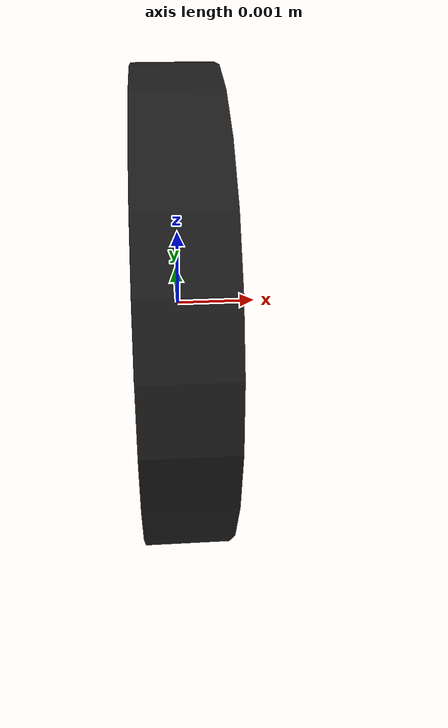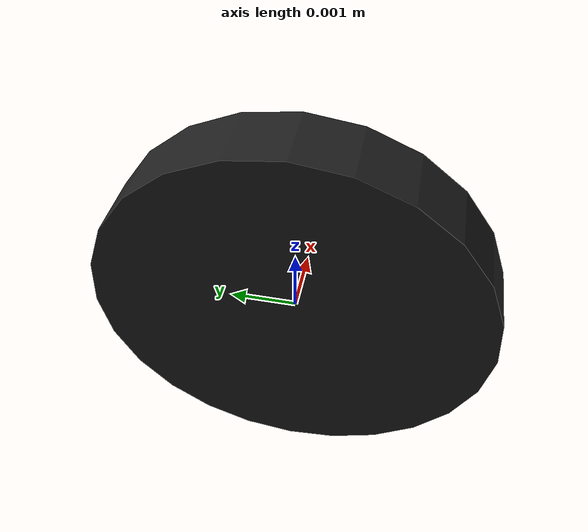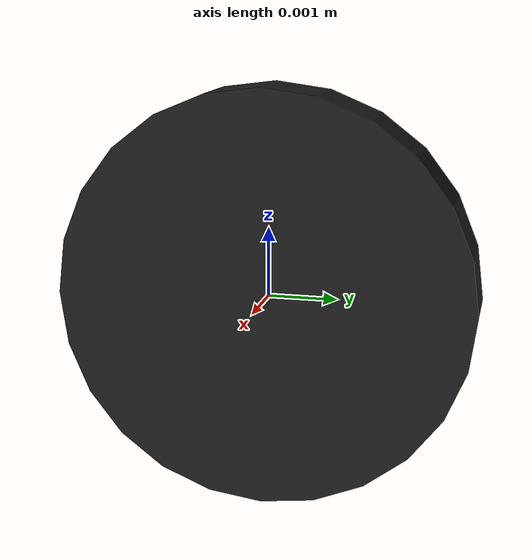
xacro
<?xml version="1.0"?>
<robot name="cam" xmlns:xacro="http://www.ros.org/wiki/xacro">
<!-- link name="world" /-->
<!-- Camera -->
<xacro:macro name="cam" params="name parent xyz rpy">

  <xacro:property name="camera_mockup_height" value="0.001" /> <!-- (m) camera mockup cylinder height -->
  <xacro:property name="camera_mockup_radius" value="0.003" /> <!-- (m) camera mockup cylinder radius -->

  <!-- Dummy joint, so that the root link has no inertia -->
  <joint name="camera_joint" type="fixed">
    <child link="${name}"/>
    <parent link="${name}_inertia_link"/>
    <origin xyz="0 0 0" rpy="0 0 0"/>
    <axis xyz="1 1 1"/>
    <dynamics damping="0.0"/>
  </joint>

  <!-- Dummy link, so that the root link has no inertia -->
  <link name="${name}_inertia_link">
  </link>

  <!-- Camera -->
  <link name="${name}">
    <inertial>
      <mass value="1e-5" />
      <origin xyz="0 0 0" rpy="0 0 0"/>
      <inertia ixx="1e-6" ixy="0" ixz="0" iyy="1e-6" iyz="0" izz="1e-6" />
    </inertial>
    <visual>
      <origin xyz="0 0 0" rpy="0 1.57 0"/>
      <geometry>
        <cylinder radius="${camera_mockup_radius}" length="${camera_mockup_height}"/>
      </geometry>
      <material name="black"/>
    </visual>
    <collision>
      <origin xyz="0 0 0" rpy="0 1.57 0"/>
      <geometry>
        <cylinder radius="${camera_mockup_radius}" length="${camera_mockup_height}"/>
      </geometry>
    </collision>
  </link>
  <gazebo reference="${name}">
    <material value="Gazebo/Black"/>
  </gazebo>

  <gazebo reference="${name}">
    <sensor type="camera" name="camera1">
      <always_on>0</always_on>
      <update_rate>20.0</update_rate>
      <camera name="head">
        <horizontal_fov>1.3962634</horizontal_fov>
        <image>
          <width>640</width>
          <height>480</height>
          <format>R8G8B8</format> <!-- RGB: R8G8B8, Gray: L8 -->
        </image>
        <clip>
          <near>0.02</near>
          <far>300</far>
        </clip>
        <noise>
          <type>gaussian</type>
          <!-- Noise is sampled independently per pixel on each frame.
               That pixel's noise value is added to each of its color
               channels, which at that point lie in the range [0,1]. -->
          <mean>0.0</mean>
          <stddev>0.007</stddev>
        </noise>
      </camera>
      <plugin name="camera_controller" filename="libgazebo_ros_camera.so">
      <!-- plugin name="camera_controller" filename="libgazebo_ros_triggered_camera.so" -->
        <robotNamespace></robotNamespace>
        <alwaysOn>true</alwaysOn>
        <updateRate>0.0</updateRate>
        <cameraName>${name}</cameraName>
        <imageTopicName>image_raw</imageTopicName>
        <cameraInfoTopicName>camera_info</cameraInfoTopicName>
        <frameName>${name}</frameName>
        <hackBaseline>0.07</hackBaseline>
        <distortionK1>0.0</distortionK1>
        <distortionK2>0.0</distortionK2>
        <distortionK3>0.0</distortionK3>
        <distortionT1>0.0</distortionT1>
        <distortionT2>0.0</distortionT2>
      </plugin>
    </sensor>
  </gazebo>

</xacro:macro>

<xacro:cam name="cam" parent="world" xyz="1.5 4.5 3.8" rpy="0 0 0"/>

<gazebo>
    <static>true</static>
    <self_collide>0</self_collide>
</gazebo>

</robot>
